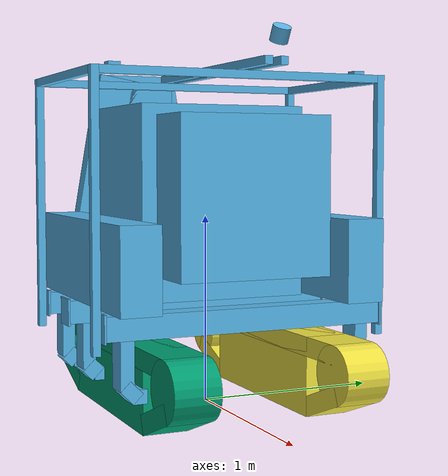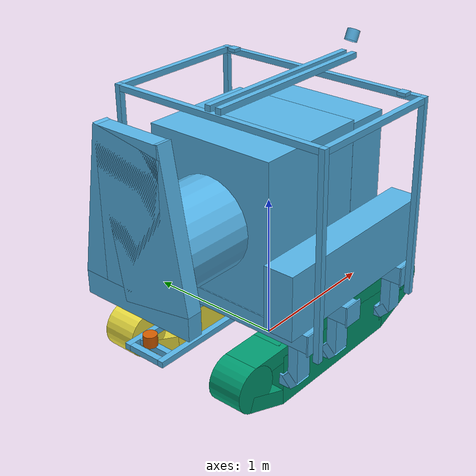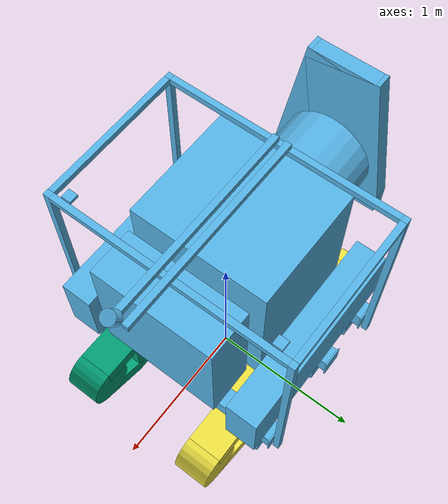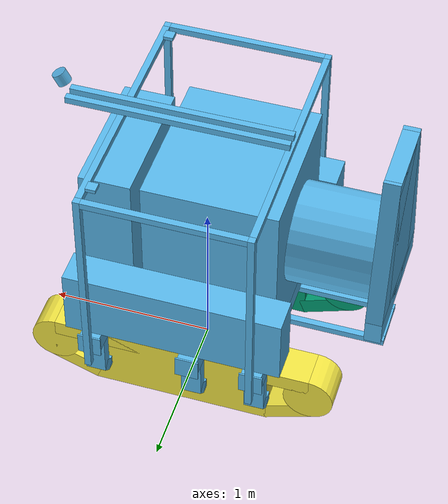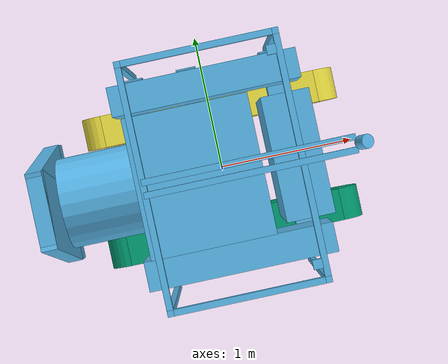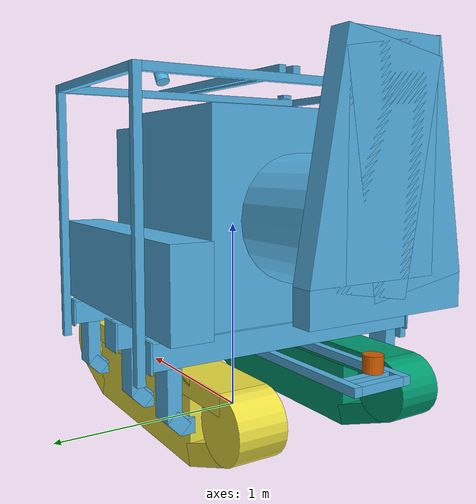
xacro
<?xml version="1.0"?>
<robot xmlns:xacro="http://www.ros.org/wiki/xacro" name="asb_robot">
  <xacro:arg name="test" default="false" />

  <xacro:include filename="$(find asb_ros2_control)/urdf/asb_description.urdf.xacro" />
  <xacro:include filename="$(find asb_ros2_control)/urdf/asb.materials.xacro" />
  <xacro:include filename="$(find asb_ros2_control)/ros2_control/asb.ros2_control.xacro" />

  <xacro:asb_description />
  <xacro:asb_ros2_control name="asb" test="$(arg test)" />

</robot>

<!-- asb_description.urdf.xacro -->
<robot xmlns:xacro="http://www.ros.org/wiki/xacro">

  <xacro:macro name="asb_description">

    <link name="base_footprint"/>

    <joint name="base_joint" type="fixed">
        <parent link="base_footprint"/>
        <child link="base_link" />
        <origin xyz="0 0 0.2" rpy="0 0 0"/>
    </joint>

    <!-- BEGIN generated by Webots -->
    <link name="base_link">
      <visual>
        <origin xyz="0 0.77 1.515" rpy="0 0 0"/>
        <geometry>
          <box size="0.94 0.04 0.04"/>
        </geometry>
      </visual>
      <collision>
        <origin xyz="0 0.77 1.515" rpy="0 0 0"/>
        <geometry>
          <box size="0.94 0.04 0.04"/>
        </geometry>
      </collision>
      <visual>
        <origin xyz="0 -0.77 1.515" rpy="0 0 0"/>
        <geometry>
          <box size="0.94 0.04 0.04"/>
        </geometry>
      </visual>
      <collision>
        <origin xyz="0 -0.77 1.515" rpy="0 0 0"/>
        <geometry>
          <box size="0.94 0.04 0.04"/>
        </geometry>
      </collision>
      <visual>
        <origin xyz="0.49 0 1.515" rpy="0 0 0"/>
        <geometry>
          <box size="0.04 1.5 0.04"/>
        </geometry>
      </visual>
      <collision>
        <origin xyz="0.49 0 1.515" rpy="0 0 0"/>
        <geometry>
          <box size="0.04 1.5 0.04"/>
        </geometry>
      </collision>
      <visual>
        <origin xyz="-0.49 0 1.515" rpy="0 0 0"/>
        <geometry>
          <box size="0.04 1.5 0.04"/>
        </geometry>
      </visual>
      <collision>
        <origin xyz="-0.49 0 1.515" rpy="0 0 0"/>
        <geometry>
          <box size="0.04 1.5 0.04"/>
        </geometry>
      </collision>
      <visual>
        <origin xyz="0.165 0.04 1.555" rpy="0 0 0"/>
        <geometry>
          <box size="1.32 0.04 0.04"/>
        </geometry>
      </visual>
      <collision>
        <origin xyz="0.165 0.04 1.555" rpy="0 0 0"/>
        <geometry>
          <box size="1.32 0.04 0.04"/>
        </geometry>
      </collision>
      <visual>
        <origin xyz="0.165 -0.04 1.555" rpy="0 0 0"/>
        <geometry>
          <box size="1.32 0.04 0.04"/>
        </geometry>
      </visual>
      <collision>
        <origin xyz="0.165 -0.04 1.555" rpy="0 0 0"/>
        <geometry>
          <box size="1.32 0.04 0.04"/>
        </geometry>
      </collision>
      <visual>
        <origin xyz="-0.45 0.1325 0.236" rpy="0 0 0"/>
        <geometry>
          <box size="1.37 0.04 0.04"/>
        </geometry>
      </visual>
      <collision>
        <origin xyz="-0.45 0.1325 0.236" rpy="0 0 0"/>
        <geometry>
          <box size="1.37 0.04 0.04"/>
        </geometry>
      </collision>
      <visual>
        <origin xyz="-0.45 -0.1325 0.236" rpy="0 0 0"/>
        <geometry>
          <box size="1.37 0.04 0.04"/>
        </geometry>
      </visual>
      <collision>
        <origin xyz="-0.45 -0.1325 0.236" rpy="0 0 0"/>
        <geometry>
          <box size="1.37 0.04 0.04"/>
        </geometry>
      </collision>
      <visual>
        <origin xyz="-1.115 0 0.236" rpy="0 0 0"/>
        <geometry>
          <box size="0.04 0.225 0.04"/>
        </geometry>
      </visual>
      <collision>
        <origin xyz="-1.115 0 0.236" rpy="0 0 0"/>
        <geometry>
          <box size="0.04 0.225 0.04"/>
        </geometry>
      </collision>
      <visual>
        <origin xyz="-1.035 0 0.236" rpy="0 0 0"/>
        <geometry>
          <box size="0.04 0.225 0.04"/>
        </geometry>
      </visual>
      <collision>
        <origin xyz="-1.035 0 0.236" rpy="0 0 0"/>
        <geometry>
          <box size="0.04 0.225 0.04"/>
        </geometry>
      </collision>
      <visual>
        <origin xyz="0.49 0.77 0.86" rpy="0 0 0"/>
        <geometry>
          <box size="0.04 0.04 1.35"/>
        </geometry>
      </visual>
      <collision>
        <origin xyz="0.49 0.77 0.86" rpy="0 0 0"/>
        <geometry>
          <box size="0.04 0.04 1.35"/>
        </geometry>
      </collision>
      <visual>
        <origin xyz="0.49 -0.77 0.86" rpy="0 0 0"/>
        <geometry>
          <box size="0.04 0.04 1.35"/>
        </geometry>
      </visual>
      <collision>
        <origin xyz="0.49 -0.77 0.86" rpy="0 0 0"/>
        <geometry>
          <box size="0.04 0.04 1.35"/>
        </geometry>
      </collision>
      <visual>
        <origin xyz="-0.49 0.77 0.86" rpy="0 0 0"/>
        <geometry>
          <box size="0.04 0.04 1.35"/>
        </geometry>
      </visual>
      <collision>
        <origin xyz="-0.49 0.77 0.86" rpy="0 0 0"/>
        <geometry>
          <box size="0.04 0.04 1.35"/>
        </geometry>
      </collision>
      <visual>
        <origin xyz="-0.49 -0.77 0.86" rpy="0 0 0"/>
        <geometry>
          <box size="0.04 0.04 1.35"/>
        </geometry>
      </visual>
      <collision>
        <origin xyz="-0.49 -0.77 0.86" rpy="0 0 0"/>
        <geometry>
          <box size="0.04 0.04 1.35"/>
        </geometry>
      </collision>
      <visual>
        <origin xyz="0.491 0 0.315" rpy="0 0 0"/>
        <geometry>
          <box size="0.12 1.48 0.12"/>
        </geometry>
      </visual>
      <collision>
        <origin xyz="0.491 0 0.315" rpy="0 0 0"/>
        <geometry>
          <box size="0.12 1.48 0.12"/>
        </geometry>
      </collision>
      <visual>
        <origin xyz="0.491 0.745 0.315" rpy="0 0 0"/>
        <geometry>
          <box size="0.14 0.01 0.14"/>
        </geometry>
      </visual>
      <collision>
        <origin xyz="0.491 0.745 0.315" rpy="0 0 0"/>
        <geometry>
          <box size="0.14 0.01 0.14"/>
        </geometry>
      </collision>
      <visual>
        <origin xyz="0.491 0.635 0.135" rpy="0 0 0"/>
        <geometry>
          <box size="0.12 0.07 0.24"/>
        </geometry>
      </visual>
      <collision>
        <origin xyz="0.491 0.635 0.135" rpy="0 0 0"/>
        <geometry>
          <box size="0.12 0.07 0.24"/>
        </geometry>
      </collision>
      <visual>
        <origin xyz="0.491 0.6135 0.008" rpy="-0.7854 0 0"/>
        <geometry>
          <box size="0.121 0.07 0.09"/>
        </geometry>
      </visual>
      <collision>
        <origin xyz="0.491 0.6135 0.008" rpy="-0.7854 0 0"/>
        <geometry>
          <box size="0.121 0.07 0.09"/>
        </geometry>
      </collision>
      <visual>
        <origin xyz="0.491 0.5714 -0.0134" rpy="0 0 0"/>
        <geometry>
          <box size="0.12 0.07 0.07"/>
        </geometry>
      </visual>
      <collision>
        <origin xyz="0.491 0.5714 -0.0134" rpy="0 0 0"/>
        <geometry>
          <box size="0.12 0.07 0.07"/>
        </geometry>
      </collision>
      <visual>
        <origin xyz="0.491 -0.745 0.315" rpy="0 0 0"/>
        <geometry>
          <box size="0.14 0.01 0.14"/>
        </geometry>
      </visual>
      <collision>
        <origin xyz="0.491 -0.745 0.315" rpy="0 0 0"/>
        <geometry>
          <box size="0.14 0.01 0.14"/>
        </geometry>
      </collision>
      <visual>
        <origin xyz="0.491 -0.635 0.135" rpy="0 0 0"/>
        <geometry>
          <box size="0.12 0.07 0.24"/>
        </geometry>
      </visual>
      <collision>
        <origin xyz="0.491 -0.635 0.135" rpy="0 0 0"/>
        <geometry>
          <box size="0.12 0.07 0.24"/>
        </geometry>
      </collision>
      <visual>
        <origin xyz="0.491 -0.6135 0.008" rpy="0.7854 0 0"/>
        <geometry>
          <box size="0.121 0.07 0.09"/>
        </geometry>
      </visual>
      <collision>
        <origin xyz="0.491 -0.6135 0.008" rpy="0.7854 0 0"/>
        <geometry>
          <box size="0.121 0.07 0.09"/>
        </geometry>
      </collision>
      <visual>
        <origin xyz="0.491 -0.5714 -0.0134" rpy="0 0 0"/>
        <geometry>
          <box size="0.12 0.07 0.07"/>
        </geometry>
      </visual>
      <collision>
        <origin xyz="0.491 -0.5714 -0.0134" rpy="0 0 0"/>
        <geometry>
          <box size="0.12 0.07 0.07"/>
        </geometry>
      </collision>
      <visual>
        <origin xyz="-0.106 0 0.315" rpy="0 0 0"/>
        <geometry>
          <box size="0.12 1.48 0.12"/>
        </geometry>
      </visual>
      <collision>
        <origin xyz="-0.106 0 0.315" rpy="0 0 0"/>
        <geometry>
          <box size="0.12 1.48 0.12"/>
        </geometry>
      </collision>
      <visual>
        <origin xyz="-0.106 0.745 0.315" rpy="0 0 0"/>
        <geometry>
          <box size="0.14 0.01 0.14"/>
        </geometry>
      </visual>
      <collision>
        <origin xyz="-0.106 0.745 0.315" rpy="0 0 0"/>
        <geometry>
          <box size="0.14 0.01 0.14"/>
        </geometry>
      </collision>
      <visual>
        <origin xyz="-0.106 0.635 0.135" rpy="0 0 0"/>
        <geometry>
          <box size="0.12 0.07 0.24"/>
        </geometry>
      </visual>
      <collision>
        <origin xyz="-0.106 0.635 0.135" rpy="0 0 0"/>
        <geometry>
          <box size="0.12 0.07 0.24"/>
        </geometry>
      </collision>
      <visual>
        <origin xyz="-0.106 0.6135 0.008" rpy="-0.7854 0 0"/>
        <geometry>
          <box size="0.121 0.07 0.09"/>
        </geometry>
      </visual>
      <collision>
        <origin xyz="-0.106 0.6135 0.008" rpy="-0.7854 0 0"/>
        <geometry>
          <box size="0.121 0.07 0.09"/>
        </geometry>
      </collision>
      <visual>
        <origin xyz="-0.106 0.5714 -0.0134" rpy="0 0 0"/>
        <geometry>
          <box size="0.12 0.07 0.07"/>
        </geometry>
      </visual>
      <collision>
        <origin xyz="-0.106 0.5714 -0.0134" rpy="0 0 0"/>
        <geometry>
          <box size="0.12 0.07 0.07"/>
        </geometry>
      </collision>
      <visual>
        <origin xyz="-0.106 -0.745 0.315" rpy="0 0 0"/>
        <geometry>
          <box size="0.14 0.01 0.14"/>
        </geometry>
      </visual>
      <collision>
        <origin xyz="-0.106 -0.745 0.315" rpy="0 0 0"/>
        <geometry>
          <box size="0.14 0.01 0.14"/>
        </geometry>
      </collision>
      <visual>
        <origin xyz="-0.106 -0.635 0.135" rpy="0 0 0"/>
        <geometry>
          <box size="0.12 0.07 0.24"/>
        </geometry>
      </visual>
      <collision>
        <origin xyz="-0.106 -0.635 0.135" rpy="0 0 0"/>
        <geometry>
          <box size="0.12 0.07 0.24"/>
        </geometry>
      </collision>
      <visual>
        <origin xyz="-0.106 -0.6135 0.008" rpy="-0.7854 0 0"/>
        <geometry>
          <box size="0.121 0.07 0.09"/>
        </geometry>
      </visual>
      <collision>
        <origin xyz="-0.106 -0.6135 0.008" rpy="-0.7854 0 0"/>
        <geometry>
          <box size="0.121 0.07 0.09"/>
        </geometry>
      </collision>
      <visual>
        <origin xyz="-0.106 -0.5714 -0.0134" rpy="0 0 0"/>
        <geometry>
          <box size="0.12 0.07 0.07"/>
        </geometry>
      </visual>
      <collision>
        <origin xyz="-0.106 -0.5714 -0.0134" rpy="0 0 0"/>
        <geometry>
          <box size="0.12 0.07 0.07"/>
        </geometry>
      </collision>
      <visual>
        <origin xyz="-0.491 0 0.315" rpy="0 0 0"/>
        <geometry>
          <box size="0.12 1.48 0.12"/>
        </geometry>
      </visual>
      <collision>
        <origin xyz="-0.491 0 0.315" rpy="0 0 0"/>
        <geometry>
          <box size="0.12 1.48 0.12"/>
        </geometry>
      </collision>
      <visual>
        <origin xyz="-0.491 0.745 0.315" rpy="0 0 0"/>
        <geometry>
          <box size="0.14 0.01 0.14"/>
        </geometry>
      </visual>
      <collision>
        <origin xyz="-0.491 0.745 0.315" rpy="0 0 0"/>
        <geometry>
          <box size="0.14 0.01 0.14"/>
        </geometry>
      </collision>
      <visual>
        <origin xyz="-0.491 0.635 0.135" rpy="0 0 0"/>
        <geometry>
          <box size="0.12 0.07 0.24"/>
        </geometry>
      </visual>
      <collision>
        <origin xyz="-0.491 0.635 0.135" rpy="0 0 0"/>
        <geometry>
          <box size="0.12 0.07 0.24"/>
        </geometry>
      </collision>
      <visual>
        <origin xyz="-0.491 0.6135 0.008" rpy="-0.7854 0 0"/>
        <geometry>
          <box size="0.121 0.07 0.09"/>
        </geometry>
      </visual>
      <collision>
        <origin xyz="-0.491 0.6135 0.008" rpy="-0.7854 0 0"/>
        <geometry>
          <box size="0.121 0.07 0.09"/>
        </geometry>
      </collision>
      <visual>
        <origin xyz="-0.491 0.5714 -0.0134" rpy="0 0 0"/>
        <geometry>
          <box size="0.12 0.07 0.07"/>
        </geometry>
      </visual>
      <collision>
        <origin xyz="-0.491 0.5714 -0.0134" rpy="0 0 0"/>
        <geometry>
          <box size="0.12 0.07 0.07"/>
        </geometry>
      </collision>
      <visual>
        <origin xyz="-0.491 -0.745 0.315" rpy="0 0 0"/>
        <geometry>
          <box size="0.14 0.01 0.14"/>
        </geometry>
      </visual>
      <collision>
        <origin xyz="-0.491 -0.745 0.315" rpy="0 0 0"/>
        <geometry>
          <box size="0.14 0.01 0.14"/>
        </geometry>
      </collision>
      <visual>
        <origin xyz="-0.491 -0.635 0.135" rpy="0 0 0"/>
        <geometry>
          <box size="0.12 0.07 0.24"/>
        </geometry>
      </visual>
      <collision>
        <origin xyz="-0.491 -0.635 0.135" rpy="0 0 0"/>
        <geometry>
          <box size="0.12 0.07 0.24"/>
        </geometry>
      </collision>
      <visual>
        <origin xyz="-0.491 -0.6135 0.008" rpy="-0.7854 0 0"/>
        <geometry>
          <box size="0.121 0.07 0.09"/>
        </geometry>
      </visual>
      <collision>
        <origin xyz="-0.491 -0.6135 0.008" rpy="-0.7854 0 0"/>
        <geometry>
          <box size="0.121 0.07 0.09"/>
        </geometry>
      </collision>
      <visual>
        <origin xyz="-0.491 -0.5714 -0.0134" rpy="0 0 0"/>
        <geometry>
          <box size="0.12 0.07 0.07"/>
        </geometry>
      </visual>
      <collision>
        <origin xyz="-0.491 -0.5714 -0.0134" rpy="0 0 0"/>
        <geometry>
          <box size="0.12 0.07 0.07"/>
        </geometry>
      </collision>
      <visual>
        <origin xyz="0 0.6 0.59" rpy="0 0 0"/>
        <geometry>
          <box size="1.3 0.205 0.425"/>
        </geometry>
      </visual>
      <collision>
        <origin xyz="0 0.6 0.59" rpy="0 0 0"/>
        <geometry>
          <box size="1.3 0.205 0.425"/>
        </geometry>
      </collision>
      <visual>
        <origin xyz="0 -0.6 0.59" rpy="0 0 0"/>
        <geometry>
          <box size="1.3 0.205 0.425"/>
        </geometry>
      </visual>
      <collision>
        <origin xyz="0 -0.6 0.59" rpy="0 0 0"/>
        <geometry>
          <box size="1.3 0.205 0.425"/>
        </geometry>
      </collision>
      <visual>
        <origin xyz="0.48 0 0.92" rpy="0 0 0"/>
        <geometry>
          <box size="0.31 0.8 0.8"/>
        </geometry>
      </visual>
      <collision>
        <origin xyz="0.48 0 0.92" rpy="0 0 0"/>
        <geometry>
          <box size="0.31 0.8 0.8"/>
        </geometry>
      </collision>
      <visual>
        <origin xyz="-0.15 0 0.88" rpy="0 0 0"/>
        <geometry>
          <box size="0.8 0.9 1"/>
        </geometry>
      </visual>
      <collision>
        <origin xyz="-0.15 0 0.88" rpy="0 0 0"/>
        <geometry>
          <box size="0.8 0.9 1"/>
        </geometry>
      </collision>
      <visual>
        <origin xyz="-0.8 0 0.87" rpy="3.141593 1.570793 3.141593"/>
        <geometry>
          <cylinder radius="0.3" length="0.53"/>
        </geometry>
      </visual>
      <collision>
        <origin xyz="-0.8 0 0.87" rpy="3.141593 1.570793 3.141593"/>
        <geometry>
          <cylinder radius="0.3" length="0.53"/>
        </geometry>
      </collision>
      <visual>
        <origin xyz="-1.11 0 0.595" rpy="0 0 0"/>
        <geometry>
          <box size="0.1 0.8 0.15"/>
        </geometry>
      </visual>
      <collision>
        <origin xyz="-1.11 0 0.595" rpy="0 0 0"/>
        <geometry>
          <box size="0.1 0.8 0.15"/>
        </geometry>
      </collision>
      <visual>
        <origin xyz="-1.11 0 1.145" rpy="0 0 0"/>
        <geometry>
          <box size="0.1 0.46 0.95"/>
        </geometry>
      </visual>
      <collision>
        <origin xyz="-1.11 0 1.145" rpy="0 0 0"/>
        <geometry>
          <box size="0.1 0.46 0.95"/>
        </geometry>
      </collision>
      <visual>
        <origin xyz="-1.11 0.077801 1.10525" rpy="0.17 0 0"/>
        <geometry>
          <box size="0.1 0.49 0.97"/>
        </geometry>
      </visual>
      <collision>
        <origin xyz="-1.11 0.077801 1.10525" rpy="0.17 0 0"/>
        <geometry>
          <box size="0.1 0.49 0.97"/>
        </geometry>
      </collision>
      <visual>
        <origin xyz="-1.11 -0.077801 1.10525" rpy="-0.17 0 0"/>
        <geometry>
          <box size="0.1 0.49 0.97"/>
        </geometry>
      </visual>
      <collision>
        <origin xyz="-1.11 -0.077801 1.10525" rpy="-0.17 0 0"/>
        <geometry>
          <box size="0.1 0.49 0.97"/>
        </geometry>
      </collision>
      <visual>
        <origin xyz="0.44185 -0.663 1.54363" rpy="0 0 0"/>
        <geometry>
          <box size="0.06 0.06 0.0225"/>
        </geometry>
      </visual>
      <collision>
        <origin xyz="0.44185 -0.663 1.54363" rpy="0 0 0"/>
        <geometry>
          <box size="0.06 0.06 0.0225"/>
        </geometry>
      </collision>
      <visual>
        <origin xyz="0.44185 0.662 1.54363" rpy="0 0 0"/>
        <geometry>
          <box size="0.06 0.06 0.0225"/>
        </geometry>
      </visual>
      <collision>
        <origin xyz="0.44185 0.662 1.54363" rpy="0 0 0"/>
        <geometry>
          <box size="0.06 0.06 0.0225"/>
        </geometry>
      </collision>
    </link>
    <link name="right_track">
      <visual>
        <origin xyz="0 0 0.155" rpy="1.570796 0 0"/>
        <geometry>
          <box size="1.578 0.1 0.23"/>
        </geometry>
      </visual>
      <collision>
        <origin xyz="0 0 0.155" rpy="1.570796 0 0"/>
        <geometry>
          <box size="1.578 0.1 0.23"/>
        </geometry>
      </collision>
      <visual>
        <origin xyz="0 0 0" rpy="1.570796 0 0"/>
        <geometry>
          <box size="1.07 0.41 0.23"/>
        </geometry>
      </visual>
      <collision>
        <origin xyz="0 0 0" rpy="1.570796 0 0"/>
        <geometry>
          <box size="1.07 0.41 0.23"/>
        </geometry>
      </collision>
      <visual>
        <origin xyz="0.670844 0 -0.098557" rpy="0 -0.37 0"/>
        <geometry>
          <box size="0.33 0.23 0.1"/>
        </geometry>
      </visual>
      <collision>
        <origin xyz="0.670844 0 -0.098557" rpy="0 -0.37 0"/>
        <geometry>
          <box size="0.33 0.23 0.1"/>
        </geometry>
      </collision>
      <visual>
        <origin xyz="-0.670844 0 -0.098557" rpy="0 0.37 0"/>
        <geometry>
          <box size="0.33 0.23 0.1"/>
        </geometry>
      </visual>
      <collision>
        <origin xyz="-0.670844 0 -0.098557" rpy="0 0.37 0"/>
        <geometry>
          <box size="0.33 0.23 0.1"/>
        </geometry>
      </collision>
      <visual>
        <origin xyz="-0.789 0 0.054" rpy="1.5708 0 0"/>
        <geometry>
          <cylinder radius="0.151" length="0.23"/>
        </geometry>
      </visual>
      <collision>
        <origin xyz="-0.789 0 0.054" rpy="1.5708 0 0"/>
        <geometry>
          <cylinder radius="0.151" length="0.23"/>
        </geometry>
      </collision>
      <visual>
        <origin xyz="0.789 0 0.054" rpy="1.5708 0 0"/>
        <geometry>
          <cylinder radius="0.151" length="0.23"/>
        </geometry>
      </visual>
      <collision>
        <origin xyz="0.789 0 0.054" rpy="1.5708 0 0"/>
        <geometry>
          <cylinder radius="0.151" length="0.23"/>
        </geometry>
      </collision>
    </link>
    <joint name="base_link_right_track_joint" type="fixed">
      <parent link="base_link"/>
      <child link="right_track"/>
      <origin xyz="0 -0.44 0" rpy="0 0 0"/>
    </joint>
    <link name="left_track">
      <visual>
        <origin xyz="0 0 0.155" rpy="1.570796 0 0"/>
        <geometry>
          <box size="1.578 0.1 0.23"/>
        </geometry>
      </visual>
      <collision>
        <origin xyz="0 0 0.155" rpy="1.570796 0 0"/>
        <geometry>
          <box size="1.578 0.1 0.23"/>
        </geometry>
      </collision>
      <visual>
        <origin xyz="0 0 0" rpy="1.570796 0 0"/>
        <geometry>
          <box size="1.07 0.41 0.23"/>
        </geometry>
      </visual>
      <collision>
        <origin xyz="0 0 0" rpy="1.570796 0 0"/>
        <geometry>
          <box size="1.07 0.41 0.23"/>
        </geometry>
      </collision>
      <visual>
        <origin xyz="0.670844 0 -0.098557" rpy="0 -0.37 0"/>
        <geometry>
          <box size="0.33 0.23 0.1"/>
        </geometry>
      </visual>
      <collision>
        <origin xyz="0.670844 0 -0.098557" rpy="0 -0.37 0"/>
        <geometry>
          <box size="0.33 0.23 0.1"/>
        </geometry>
      </collision>
      <visual>
        <origin xyz="-0.670844 0 -0.098557" rpy="0 0.37 0"/>
        <geometry>
          <box size="0.33 0.23 0.1"/>
        </geometry>
      </visual>
      <collision>
        <origin xyz="-0.670844 0 -0.098557" rpy="0 0.37 0"/>
        <geometry>
          <box size="0.33 0.23 0.1"/>
        </geometry>
      </collision>
      <visual>
        <origin xyz="-0.789 0 0.054" rpy="1.5708 0 0"/>
        <geometry>
          <cylinder radius="0.151" length="0.23"/>
        </geometry>
      </visual>
      <collision>
        <origin xyz="-0.789 0 0.054" rpy="1.5708 0 0"/>
        <geometry>
          <cylinder radius="0.151" length="0.23"/>
        </geometry>
      </collision>
      <visual>
        <origin xyz="0.789 0 0.054" rpy="1.5708 0 0"/>
        <geometry>
          <cylinder radius="0.151" length="0.23"/>
        </geometry>
      </visual>
      <collision>
        <origin xyz="0.789 0 0.054" rpy="1.5708 0 0"/>
        <geometry>
          <cylinder radius="0.151" length="0.23"/>
        </geometry>
      </collision>
    </link>
    <joint name="base_link_left_track_joint" type="fixed">
      <parent link="base_link"/>
      <child link="left_track"/>
      <origin xyz="0 0.44 0" rpy="0 0 0"/>
    </joint>
    <link name="sprayer_link">
    </link>
    <joint name="base_link_sprayer_link_joint" type="fixed">
      <parent link="base_link"/>
      <child link="sprayer_link"/>
      <origin xyz="-1.06 0 0.52" rpy="0 0 0"/>
    </joint>
    <link name="base_scan_rear_multilayer_sim">
      <visual>
        <origin xyz="0 0 0" rpy="0 0 0"/>
        <geometry>
          <cylinder radius="0.0435" length="0.0742"/>
        </geometry>
      </visual>
      <collision>
        <origin xyz="0 0 0" rpy="0 0 0"/>
        <geometry>
          <cylinder radius="0.0435" length="0.0742"/>
        </geometry>
      </collision>
    </link>
    <joint name="base_link_base_scan_rear_multilayer_sim_joint" type="fixed">
      <parent link="base_link"/>
      <child link="base_scan_rear_multilayer_sim"/>
      <origin xyz="-1.075 0 0.316595" rpy="0 0 -3.141593"/>
    </joint>
    <link name="base_scan_rear_multilayer_plate_optical_center">
    </link>
    <joint name="base_link_base_scan_rear_multilayer_plate_optical_center_joint" type="fixed">
      <parent link="base_link"/>
      <child link="base_scan_rear_multilayer_plate_optical_center"/>
      <origin xyz="-1.075 0 0.316595" rpy="0 0 -3.141593"/>
    </joint>
    <link name="base_scan_rear_multilayer_plate_top">
    </link>
    <joint name="base_link_base_scan_rear_multilayer_plate_top_joint" type="fixed">
      <parent link="base_link"/>
      <child link="base_scan_rear_multilayer_plate_top"/>
      <origin xyz="-1.075 0 0.2784" rpy="0 0 -3.141593"/>
    </joint>
    <link name="base_scan_rear_multilayer_plate_bottom">
    </link>
    <joint name="base_link_base_scan_rear_multilayer_plate_bottom_joint" type="fixed">
      <parent link="base_link"/>
      <child link="base_scan_rear_multilayer_plate_bottom"/>
      <origin xyz="-1.075 0 0.2559" rpy="0 0 -3.141593"/>
    </joint>
    <link name="base_scan_front_multilayer_sim">
      <visual>
        <origin xyz="0 0 0" rpy="0 0 0"/>
        <geometry>
          <cylinder radius="0.0435" length="0.0742"/>
        </geometry>
      </visual>
      <collision>
        <origin xyz="0 0 0" rpy="0 0 0"/>
        <geometry>
          <cylinder radius="0.0435" length="0.0742"/>
        </geometry>
      </collision>
    </link>
    <joint name="base_link_base_scan_front_multilayer_sim_joint" type="fixed">
      <parent link="base_link"/>
      <child link="base_scan_front_multilayer_sim"/>
      <origin xyz="0.856063 0.000607 1.67055" rpy="-0.01 0.49 0"/>
    </joint>
    <link name="base_scan_front_multilayer_optical_center">
    </link>
    <joint name="base_link_base_scan_front_multilayer_optical_center_joint" type="fixed">
      <parent link="base_link"/>
      <child link="base_scan_front_multilayer_optical_center"/>
      <origin xyz="0.856063 0.000607 1.67055" rpy="-0.01 0.49 0"/>
    </joint>
    <link name="base_scan_front_multilayer_plate_top">
    </link>
    <joint name="base_link_base_scan_front_multilayer_plate_top_joint" type="fixed">
      <parent link="base_link"/>
      <child link="base_scan_front_multilayer_plate_top"/>
      <origin xyz="0.838089 0.000225 1.636852" rpy="-0.01 0.49 0"/>
    </joint>
    <link name="base_scan_front_multilayer_plate_bottom">
    </link>
    <joint name="base_link_base_scan_front_multilayer_plate_bottom_joint" type="fixed">
      <parent link="base_link"/>
      <child link="base_scan_front_multilayer_plate_bottom"/>
      <origin xyz="0.8275 0 1.617" rpy="-0.01 0.49 0"/>
    </joint>
    <link name="VL53L8">
    </link>
    <joint name="base_link_VL53L8_joint" type="fixed">
      <parent link="base_link"/>
      <child link="VL53L8"/>
      <origin xyz="0.49 -0.5 1.515" rpy="-1.570799 0.000001 -1.570795"/>
    </joint>
    <link name="imu_link">
    </link>
    <joint name="base_link_imu_link_joint" type="fixed">
      <parent link="base_link"/>
      <child link="imu_link"/>
      <origin xyz="0.03385 -0.69 0.91" rpy="0 0 0"/>
    </joint>
    <link name="gyro_link">
    </link>
    <joint name="imu_link_gyro_link_joint" type="fixed">
      <parent link="imu_link"/>
      <child link="gyro_link"/>
      <origin xyz="0 0 0" rpy="0 0 0"/>
    </joint>
    <link name="accelerometer_link">
    </link>
    <joint name="imu_link_accelerometer_link_joint" type="fixed">
      <parent link="imu_link"/>
      <child link="accelerometer_link"/>
      <origin xyz="0 0 0" rpy="0 0 0"/>
    </joint>
    <link name="gnss_2_link">
    </link>
    <joint name="base_link_gnss_2_link_joint" type="fixed">
      <parent link="base_link"/>
      <child link="gnss_2_link"/>
      <origin xyz="0.44185 0.662 1.54363" rpy="0 0 0"/>
    </joint>
    <link name="gnss_1_link">
    </link>
    <joint name="base_link_gnss_1_link_joint" type="fixed">
      <parent link="base_link"/>
      <child link="gnss_1_link"/>
      <origin xyz="0.44185 -0.663 1.54363" rpy="0 0 0"/>
    </joint>
    <link name="inertial_link">
    </link>
    <joint name="base_link_inertial_link_joint" type="fixed">
      <parent link="base_link"/>
      <child link="inertial_link"/>
      <origin xyz="0 0 0" rpy="0 0 0"/>
    </joint>
    <!-- END generated by Webots -->
  </xacro:macro>

</robot>

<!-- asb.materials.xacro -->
<!--
Copied from ROS1 example:
https://github.com/ros-simulation/gazebo_ros_demos/blob/kinetic-devel/rrbot_description/urdf/materials.xacro
-->
<robot>

  <material name="black">
    <color rgba="0.0 0.0 0.0 1.0"/>
  </material>

  <material name="blue">
    <color rgba="0.0 0.0 0.8 1.0"/>
  </material>

  <material name="green">
    <color rgba="0.0 0.8 0.0 1.0"/>
  </material>

  <material name="grey">
    <color rgba="0.2 0.2 0.2 1.0"/>
  </material>

  <material name="orange">
    <color rgba="${255/255} ${108/255} ${10/255} 1.0"/>
  </material>

  <material name="brown">
    <color rgba="${222/255} ${207/255} ${195/255} 1.0"/>
  </material>

  <material name="red">
    <color rgba="0.8 0.0 0.0 1.0"/>
  </material>

  <material name="white">
    <color rgba="1.0 1.0 1.0 1.0"/>
  </material>

  <material name="tire_color">
      <color rgba="0.3 0.3 0.3 1.0"/>
  </material>

  <material name="base_color">
      <color rgba="0.4 0.4 0.4 1.0"/>
  </material>

  <material name="lidar_color">
      <color rgba="0.0 0.0 0.8 1.0"/>
  </material>

</robot>
